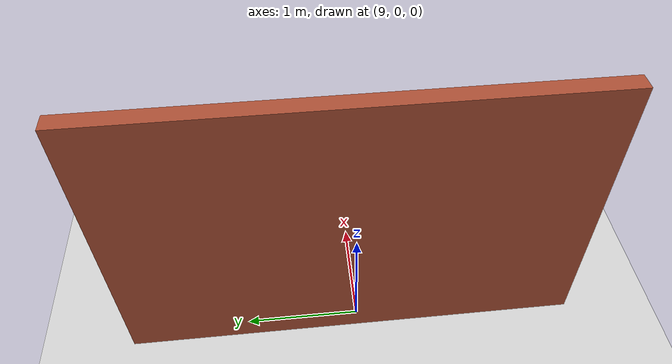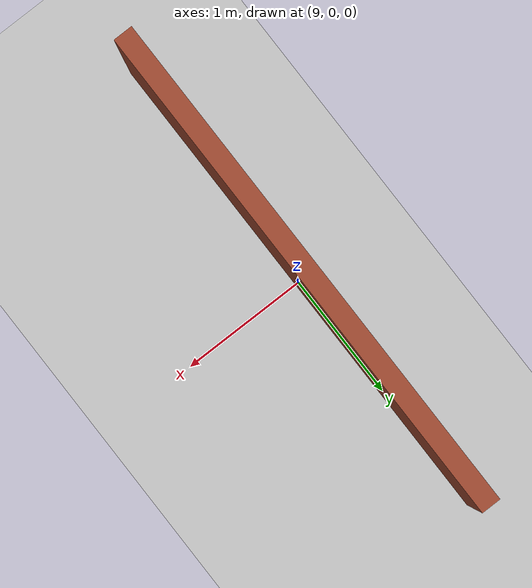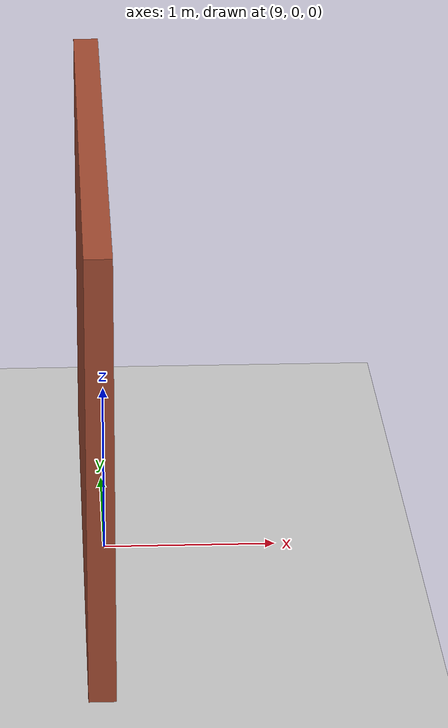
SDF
<sdf version="1.7">
 <world name="default">
  <model name="ground_plane">
   <static>1</static>
   <link name="link">
    <collision name="collision">
     <geometry><plane><normal>0 0 1</normal><size>100 100</size></plane></geometry>
     <surface><friction><ode><mu>100</mu><mu2>50</mu2></ode></friction></surface>
    </collision>
    <visual name="visual">
     <cast_shadows>0</cast_shadows>
     <geometry><plane><normal>0 0 1</normal><size>100 100</size></plane></geometry>
     <material>
      <script><uri>file://media/materials/scripts/gazebo.material</uri><name>Gazebo/Grey</name></script>
     </material>
    </visual>
   </link>
  </model>
  <light name="sun" type="directional">
   <pose>0 0 10 0 -0 0</pose>
   <diffuse>0.8 0.8 0.8 1</diffuse>
   <specular>0.2 0.2 0.2 1</specular>
   <attenuation>
    <range>1000</range>
    <constant>0.9</constant>
    <linear>0.01</linear>
    <quadratic>0.001</quadratic>
   </attenuation>
   <direction>-0.5 0.1 -0.9</direction>
   <spot><inner_angle>0</inner_angle><outer_angle>0</outer_angle><falloff>0</falloff></spot>
  </light>
  <scene><shadows>0</shadows><ambient>0.4 0.4 0.4 1</ambient><background>0.7 0.7 0.7 1</background></scene>
  <physics type="ode">
   <real_time_update_rate>1000</real_time_update_rate>
   <max_step_size>0.001</max_step_size>
   <real_time_factor>1</real_time_factor>
   <ode>
    <solver>
     <type>quick</type>
     <iters>150</iters>
     <precon_iters>0</precon_iters>
     <sor>1.4</sor>
     <use_dynamic_moi_rescaling>1</use_dynamic_moi_rescaling>
    </solver>
    <constraints>
     <cfm>1e-05</cfm>
     <erp>0.2</erp>
     <contact_max_correcting_vel>2000</contact_max_correcting_vel>
     <contact_surface_layer>0.01</contact_surface_layer>
    </constraints>
   </ode>
  </physics>
  <gravity>0 0 -9.8</gravity>
  <magnetic_field>6e-06 2.3e-05 -4.2e-05</magnetic_field>
  <atmosphere type="adiabatic"/>
  <spherical_coordinates>
   <surface_model>EARTH_WGS84</surface_model>
   <latitude_deg>0</latitude_deg>
   <longitude_deg>0</longitude_deg>
   <elevation>0</elevation>
   <heading_deg>0</heading_deg>
  </spherical_coordinates>
  <model name="emergency_braking">
   <link name="Wall_0">
    <pose>4.4376 0 0 0 -0 1.5708</pose>
    <visual name="Wall_0_Visual">
     <pose>0 0 1.25 0 -0 0</pose>
     <geometry><box><size>4 0.15 2.5</size></box></geometry>
     <material>
      <script><uri>file://media/materials/scripts/gazebo.material</uri><name>Gazebo/Bricks</name></script>
      <ambient>1 1 1 1</ambient>
      <shader type="pixel"/>
     </material>
     <meta><layer>0</layer></meta>
    </visual>
    <collision name="Wall_0_Collision">
     <pose>0 0 1.25 0 -0 0</pose>
     <geometry><box><size>4 0.15 2.5</size></box></geometry>
     <surface>
      <friction>
       <ode><mu>1</mu><mu2>1</mu2><fdir1>0 0 0</fdir1><slip1>0</slip1><slip2>0</slip2></ode>
       <torsional>
        <coefficient>1</coefficient>
        <patch_radius>0</patch_radius>
        <surface_radius>0</surface_radius>
        <use_patch_radius>1</use_patch_radius>
        <ode><slip>0</slip></ode>
       </torsional>
      </friction>
      <bounce><restitution_coefficient>0</restitution_coefficient><threshold>1e+06</threshold></bounce>
      <contact>
       <collide_without_contact>0</collide_without_contact>
       <collide_without_contact_bitmask>1</collide_without_contact_bitmask>
       <collide_bitmask>1</collide_bitmask>
       <ode>
        <soft_cfm>0</soft_cfm>
        <soft_erp>0.2</soft_erp>
        <kp>1e+13</kp>
        <kd>1</kd>
        <max_vel>0.01</max_vel>
        <min_depth>0</min_depth>
       </ode>
       <bullet>
        <split_impulse>1</split_impulse>
        <split_impulse_penetration_threshold>-0.01</split_impulse_penetration_threshold>
        <soft_cfm>0</soft_cfm>
        <soft_erp>0.2</soft_erp>
        <kp>1e+13</kp>
        <kd>1</kd>
       </bullet>
      </contact>
     </surface>
    </collision>
   </link>
   <static>1</static>
   <pose>4.5126 0.035314 0 0 -0 0</pose>
  </model>
 </world>
</sdf>
